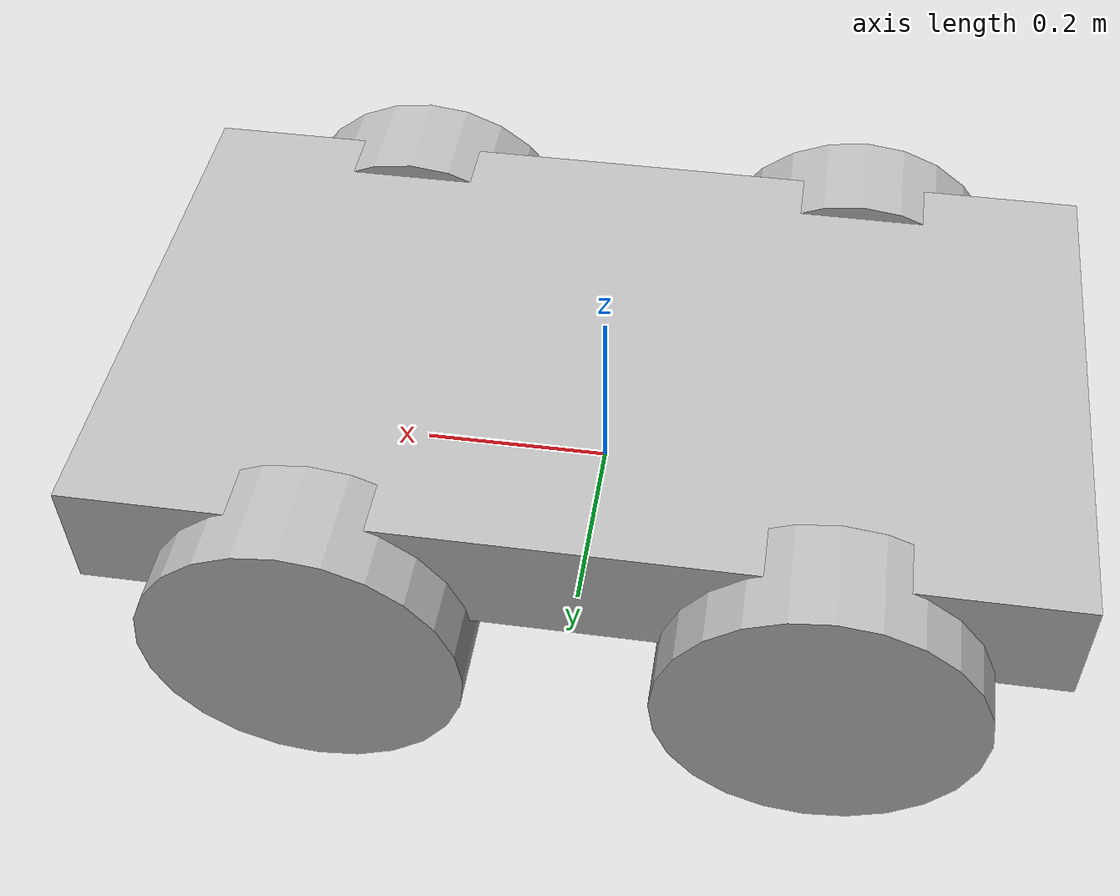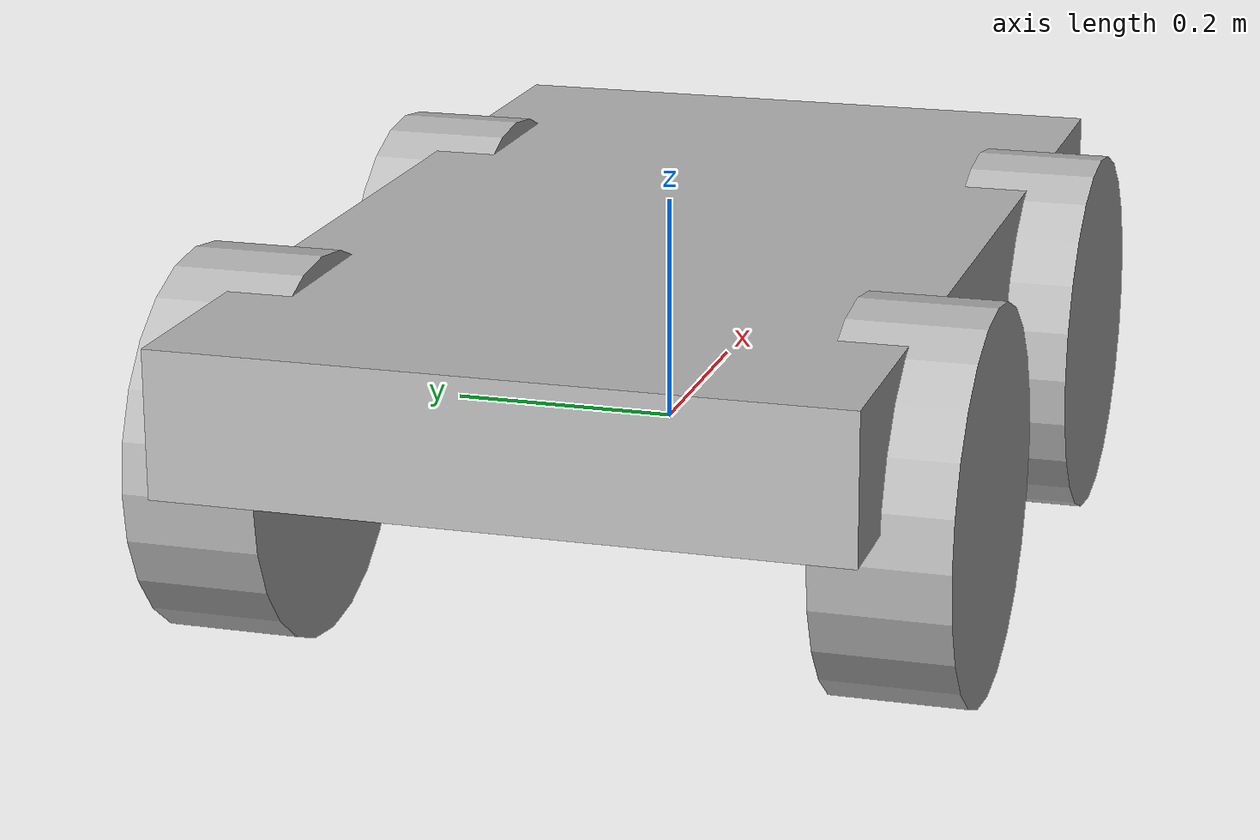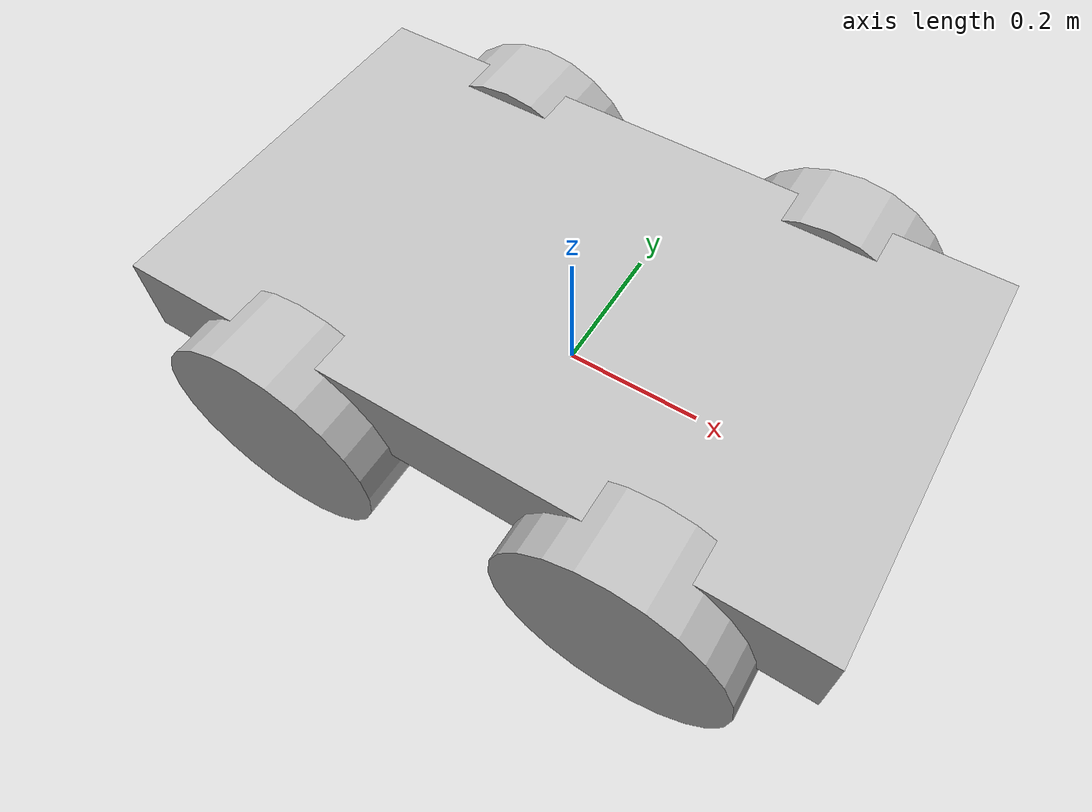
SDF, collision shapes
<?xml version='1.0' encoding='utf-8'?>
<sdf version="1.6">
  <model name="stack_rover">
    <link name="base_link">
      <inertial>
        <pose>-0.000543 -0.084945 0.062329 0 -0 0</pose>
        <mass>46.064</mass>
        <inertia>
          <ixx>0.615397</ixx>
          <ixy>-0.0240585</ixy>
          <ixz>-0.120749</ixz>
          <iyy>1.75388</iyy>
          <iyz>-0.0028322</iyz>
          <izz>2.03641</izz>
        </inertia>
      </inertial>
      <collision name="base_link_collision">
        <pose>0 0 0.12 0 0 0</pose>
        <geometry>
          <box>
            <size>0.9874 0.5709 0.12375</size>
          </box>
        </geometry>
      </collision>
      <visual name="base_link_visual">
        <geometry>
          <mesh>
            <scale>1 1 1</scale>
            <uri>meshes/base_link.dae</uri>
          </mesh>
        </geometry>
      </visual>
      <visual name="base_link_fixed_joint_lump__front_bumper_link_visual_3">
        <pose>0.48 0 0.091 0 -0 0</pose>
        <geometry>
          <mesh>
            <scale>1 1 1</scale>
            <uri>meshes/bumper.dae</uri>
          </mesh>
        </geometry>
      </visual>
      <visual name="base_link_fixed_joint_lump__rear_bumper_link_visual_4">
        <pose>-0.48 0 0.091 0 -0 3.14159</pose>
        <geometry>
          <mesh>
            <scale>1 1 1</scale>
            <uri>meshes/bumper.dae</uri>
          </mesh>
        </geometry>
      </visual>
      <visual name="base_link_fixed_joint_lump__top_chassis_link_visual_5">
        <geometry>
          <mesh>
            <scale>1 1 1</scale>
            <uri>meshes/top_chassis.dae</uri>
          </mesh>
        </geometry>
      </visual>

      <!-- Rail on top of husky -->
      <visual name="base_link_fixed_joint_lump__user_rail_link_visual_13">
        <pose>0.272 0 0.245 0 -0 0</pose>
        <geometry>
          <mesh>
            <scale>1 1 1</scale>
            <uri>meshes/user_rail.dae</uri>
          </mesh>
        </geometry>
      </visual>
      <visual name="base_link_fixed_joint_lump__landing_pad_17">
       <pose>0.0 0 0.155 0 -0 0</pose>
        <geometry>
          <box>
            <size>0.500 0.385 0.155</size>
          </box>
        </geometry>
      </visual>
      <gravity>1</gravity>
      <velocity_decay/>
    </link>

    <link name="front_left_wheel_link">
      <pose>0.256 0.2854 0.03282 0 -0 0</pose>
      <inertial>
        <mass>2.637</mass>
        <inertia>
          <ixx>0.02467</ixx>
          <ixy>0</ixy>
          <ixz>0</ixz>
          <iyy>0.04411</iyy>
          <iyz>0</iyz>
          <izz>0.02467</izz>
        </inertia>
      </inertial>
      <collision name="front_left_wheel_link_collision">
        <pose>0 0 0 1.5707963267948966 -0 0</pose>
        <geometry>
          <cylinder>
            <length>0.1143</length>
            <radius>0.1651</radius>
          </cylinder>
        </geometry>
        <surface>
          <contact>
            <ode>
              <kp>1e+07</kp>
              <kd>1</kd>
            </ode>
          </contact>
          <friction>
            <ode>
              <mu>0.5</mu>
              <mu2>1</mu2>
              <slip1>0.00062</slip1>
              <slip2>0</slip2>
              <fdir1>0 0 1</fdir1>
            </ode>
          </friction>
        </surface>
      </collision>
      <visual name="front_left_wheel_link_visual">
        <geometry>
          <mesh>
            <scale>1 1 1</scale>
            <uri>meshes/wheel.dae</uri>
          </mesh>
        </geometry>
      </visual>
      <gravity>1</gravity>
      <velocity_decay/>
    </link>
    <joint name="front_left_wheel_joint" type="revolute">
      <child>front_left_wheel_link</child>
      <parent>base_link</parent>
      <axis>
        <xyz>0 1 0</xyz>
        <limit>
          <lower>-1e+16</lower>
          <upper>1e+16</upper>
        </limit>
        <dynamics>
          <spring_reference>0</spring_reference>
          <spring_stiffness>0</spring_stiffness>
        </dynamics>
        <use_parent_model_frame>1</use_parent_model_frame>
      </axis>
    </joint>
    <link name="front_right_wheel_link">
      <pose>0.256 -0.2854 0.03282 0 -0 0</pose>
      <inertial>
        <mass>2.637</mass>
        <inertia>
          <ixx>0.02467</ixx>
          <ixy>0</ixy>
          <ixz>0</ixz>
          <iyy>0.04411</iyy>
          <iyz>0</iyz>
          <izz>0.02467</izz>
        </inertia>
      </inertial>
      <collision name="front_right_wheel_link_collision">
        <pose>0 0 0 1.5707963267948966 -0 0</pose>
        <geometry>
          <cylinder>
            <length>0.1143</length>
            <radius>0.1651</radius>
          </cylinder>
        </geometry>
        <surface>
          <contact>
            <ode>
              <kp>1e+07</kp>
              <kd>1</kd>
            </ode>
          </contact>
          <friction>
            <ode>
              <mu>0.5</mu>
              <mu2>1</mu2>
              <slip1>0.00062</slip1>
              <slip2>0</slip2>
              <fdir1>0 0 1</fdir1>
            </ode>
          </friction>
        </surface>
      </collision>
      <visual name="front_right_wheel_link_visual">
        <geometry>
          <mesh>
            <scale>1 1 1</scale>
            <uri>meshes/wheel.dae</uri>
          </mesh>
        </geometry>
      </visual>
      <gravity>1</gravity>
      <velocity_decay/>
    </link>
    <joint name="front_right_wheel_joint" type="revolute">
      <child>front_right_wheel_link</child>
      <parent>base_link</parent>
      <axis>
        <xyz>0 1 0</xyz>
        <limit>
          <lower>-1e+16</lower>
          <upper>1e+16</upper>
        </limit>
        <dynamics>
          <spring_reference>0</spring_reference>
          <spring_stiffness>0</spring_stiffness>
        </dynamics>
        <use_parent_model_frame>1</use_parent_model_frame>
      </axis>
    </joint>
    <link name="rear_left_wheel_link">
      <pose>-0.256 0.2854 0.03282 0 -0 0</pose>
      <inertial>
        <mass>2.637</mass>
        <inertia>
          <ixx>0.02467</ixx>
          <ixy>0</ixy>
          <ixz>0</ixz>
          <iyy>0.04411</iyy>
          <iyz>0</iyz>
          <izz>0.02467</izz>
        </inertia>
      </inertial>
      <collision name="rear_left_wheel_link_collision">
        <pose>0 0 0 1.5707963267948966 -0 0</pose>
        <geometry>
          <cylinder>
            <length>0.1143</length>
            <radius>0.1651</radius>
          </cylinder>
        </geometry>
        <surface>
          <contact>
            <ode>
              <kp>1e+07</kp>
              <kd>1</kd>
            </ode>
          </contact>
          <friction>
            <ode>
              <mu>0.5</mu>
              <mu2>1</mu2>
              <slip1>0.00062</slip1>
              <slip2>0</slip2>
              <fdir1>0 0 1</fdir1>
            </ode>
          </friction>
        </surface>
      </collision>
      <visual name="rear_left_wheel_link_visual">
        <geometry>
          <mesh>
            <scale>1 1 1</scale>
            <uri>meshes/wheel.dae</uri>
          </mesh>
        </geometry>
      </visual>
      <gravity>1</gravity>
      <velocity_decay/>
    </link>
    <joint name="rear_left_wheel_joint" type="revolute">
      <child>rear_left_wheel_link</child>
      <parent>base_link</parent>
      <axis>
        <xyz>0 1 0</xyz>
        <limit>
          <lower>-1e+16</lower>
          <upper>1e+16</upper>
        </limit>
        <dynamics>
          <spring_reference>0</spring_reference>
          <spring_stiffness>0</spring_stiffness>
        </dynamics>
        <use_parent_model_frame>1</use_parent_model_frame>
      </axis>
    </joint>
    <link name="rear_right_wheel_link">
      <pose>-0.256 -0.2854 0.03282 0 -0 0</pose>
      <inertial>
        <mass>2.637</mass>
        <inertia>
          <ixx>0.02467</ixx>
          <ixy>0</ixy>
          <ixz>0</ixz>
          <iyy>0.04411</iyy>
          <iyz>0</iyz>
          <izz>0.02467</izz>
        </inertia>
      </inertial>
      <collision name="rear_right_wheel_link_collision">
        <pose>0 0 0 1.5707963267948966 -0 0</pose>
        <geometry>
          <cylinder>
            <length>0.1143</length>
            <radius>0.1651</radius>
          </cylinder>
        </geometry>
        <surface>
          <contact>
            <ode>
              <kp>1e+07</kp>
              <kd>1</kd>
            </ode>
          </contact>
          <friction>
            <ode>
              <mu>0.5</mu>
              <mu2>1</mu2>
              <slip1>0.00062</slip1>
              <slip2>0</slip2>
              <fdir1>0 0 1</fdir1>
            </ode>
          </friction>
        </surface>
      </collision>
      <visual name="rear_right_wheel_link_visual">
        <geometry>
          <mesh>
            <scale>1 1 1</scale>
            <uri>meshes/wheel.dae</uri>
          </mesh>
        </geometry>
      </visual>
      <gravity>1</gravity>
      <velocity_decay/>
    </link>
    <joint name="rear_right_wheel_joint" type="revolute">
      <child>rear_right_wheel_link</child>
      <parent>base_link</parent>
      <axis>
        <xyz>0 1 0</xyz>
        <limit>
          <lower>-1e+16</lower>
          <upper>1e+16</upper>
        </limit>
        <dynamics>
          <spring_reference>0</spring_reference>
          <spring_stiffness>0</spring_stiffness>
        </dynamics>
        <use_parent_model_frame>1</use_parent_model_frame>
      </axis>
    </joint>

    <plugin
        filename="gz-sim-diff-drive-system"
        name="gz::sim::systems::DiffDrive">
        <left_joint>rear_left_wheel_joint</left_joint>
        <left_joint>front_left_wheel_joint</left_joint>
        <right_joint>rear_right_wheel_joint</right_joint>
        <right_joint>front_right_wheel_joint</right_joint>
        <wheel_separation>1.25</wheel_separation>
        <wheel_radius>0.3</wheel_radius>
        <odom_publish_frequency>1</odom_publish_frequency>
        <topic>cmd_vel</topic>
	</plugin>
  </model>
</sdf>
